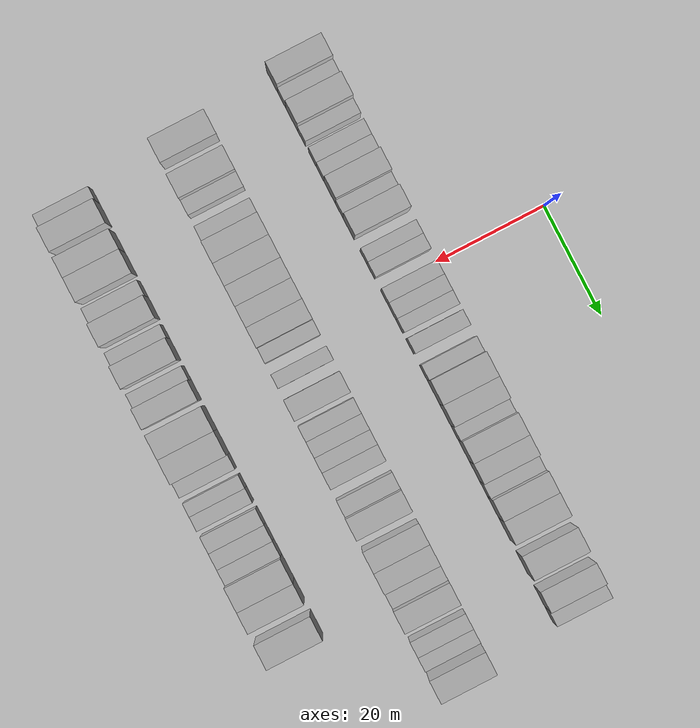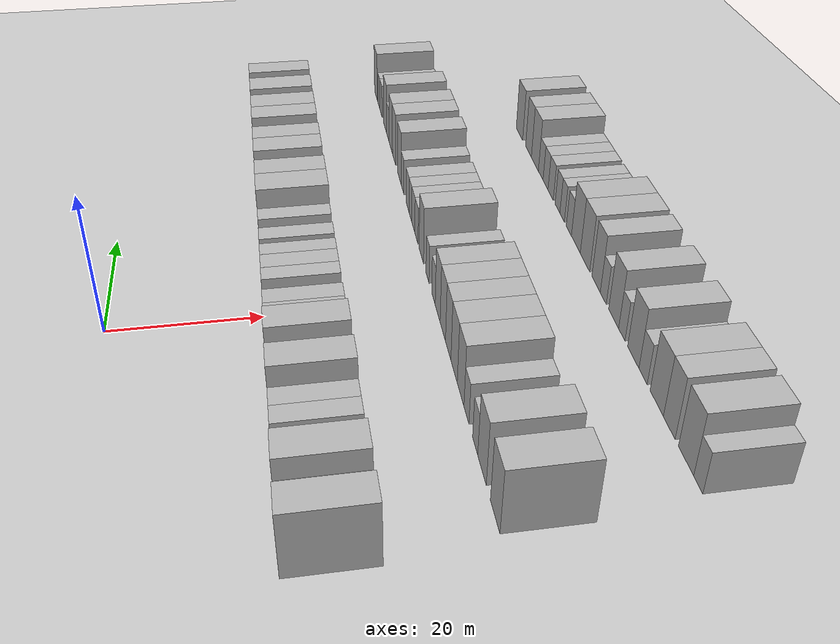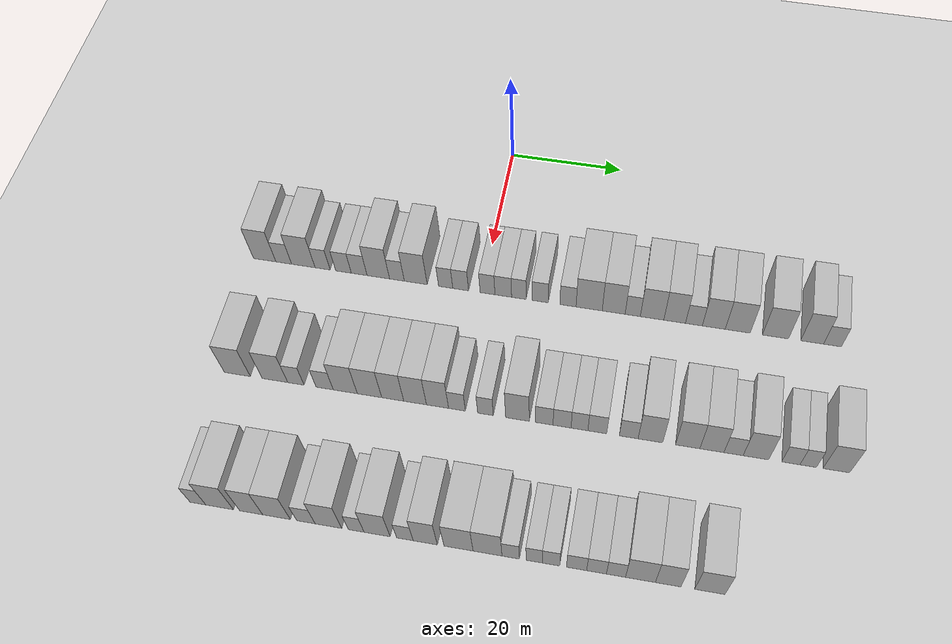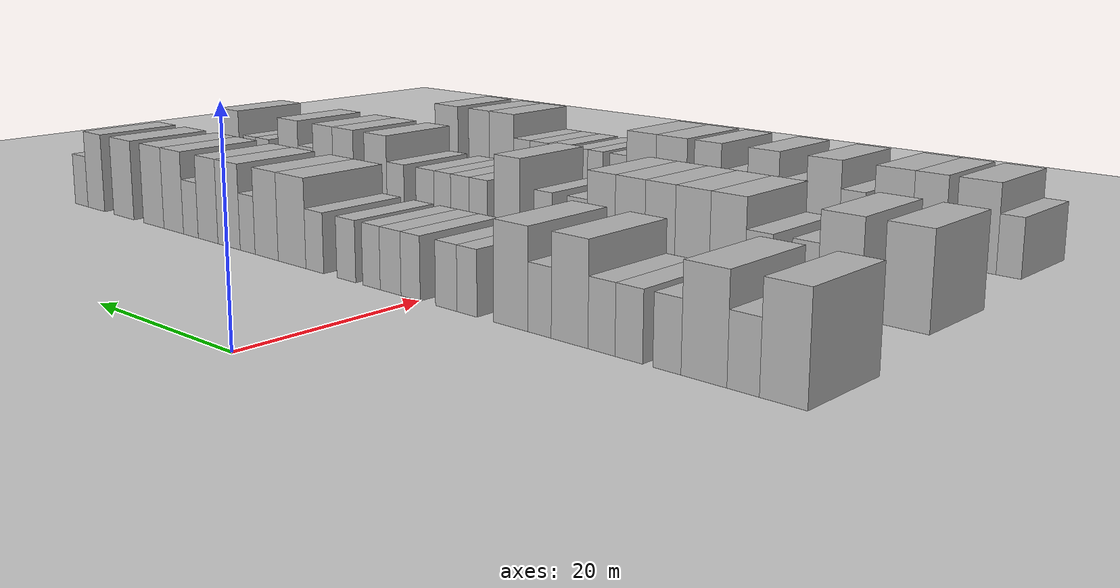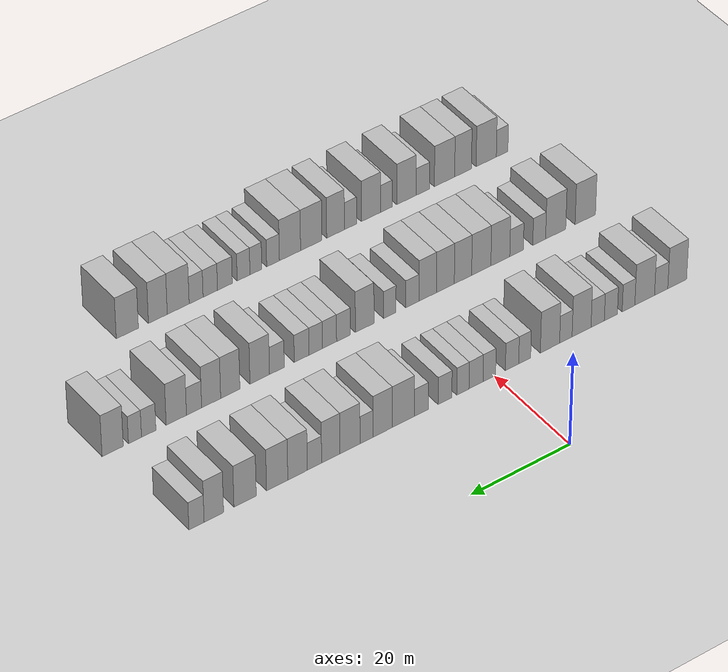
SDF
<sdf version="1.6">
 <world name="default">
  <include><name>ground_plane_1</name><uri>model://HANNAS_ground_plane</uri></include>
  <model name="building_85">
   <static>1</static>
   <pose>25.0000 -38.1934 0 0.000000 0.000000 0.000000</pose>
   <link name="link">
    <pose>0 0 4.50 0 0 0</pose>
    <collision name="collision"><geometry><box><size>10.0000 4.0238 9.0000</size></box></geometry></collision>
    <visual name="visual">
     <cast_shadows>0</cast_shadows>
     <geometry><box><size>10.0000 4.0238 9.0000</size></box></geometry>
     <material>
      <script>
       <uri>model://HANNAS_wall/materials/scripts</uri>
       <uri>model://HANNAS_wall/materials/textures</uri>
       <name>vrc/HANNAS_wall</name>
      </script>
     </material>
    </visual>
   </link>
  </model>
  <model name="building_86">
   <static>1</static>
   <pose>25.0000 -34.7676 0 0.000000 0.000000 0.000000</pose>
   <link name="link">
    <pose>0 0 3.00 0 0 0</pose>
    <collision name="collision"><geometry><box><size>10.0000 2.8278 6.0000</size></box></geometry></collision>
    <visual name="visual">
     <cast_shadows>0</cast_shadows>
     <geometry><box><size>10.0000 2.8278 6.0000</size></box></geometry>
     <material>
      <script>
       <uri>model://HANNAS_wall/materials/scripts</uri>
       <uri>model://HANNAS_wall/materials/textures</uri>
       <name>vrc/HANNAS_wall</name>
      </script>
     </material>
    </visual>
   </link>
  </model>
  <model name="building_87">
   <static>1</static>
   <pose>25.0000 -31.2595 0 0.000000 0.000000 0.000000</pose>
   <link name="link">
    <pose>0 0 4.50 0 0 0</pose>
    <collision name="collision"><geometry><box><size>10.0000 4.1885 9.0000</size></box></geometry></collision>
    <visual name="visual">
     <cast_shadows>0</cast_shadows>
     <geometry><box><size>10.0000 4.1885 9.0000</size></box></geometry>
     <material>
      <script>
       <uri>model://HANNAS_wall/materials/scripts</uri>
       <uri>model://HANNAS_wall/materials/textures</uri>
       <name>vrc/HANNAS_wall</name>
      </script>
     </material>
    </visual>
   </link>
  </model>
  <model name="building_88">
   <static>1</static>
   <pose>25.0000 -27.8253 0 0.000000 0.000000 0.000000</pose>
   <link name="link">
    <pose>0 0 3.00 0 0 0</pose>
    <collision name="collision"><geometry><box><size>10.0000 2.6799 6.0000</size></box></geometry></collision>
    <visual name="visual">
     <cast_shadows>0</cast_shadows>
     <geometry><box><size>10.0000 2.6799 6.0000</size></box></geometry>
     <material>
      <script>
       <uri>model://HANNAS_wall/materials/scripts</uri>
       <uri>model://HANNAS_wall/materials/textures</uri>
       <name>vrc/HANNAS_wall</name>
      </script>
     </material>
    </visual>
   </link>
  </model>
  <model name="building_89">
   <static>1</static>
   <pose>25.0000 -24.1056 0 0.000000 0.000000 0.000000</pose>
   <link name="link">
    <pose>0 0 3.00 0 0 0</pose>
    <collision name="collision"><geometry><box><size>10.0000 2.7595 6.0000</size></box></geometry></collision>
    <visual name="visual">
     <cast_shadows>0</cast_shadows>
     <geometry><box><size>10.0000 2.7595 6.0000</size></box></geometry>
     <material>
      <script>
       <uri>model://HANNAS_wall/materials/scripts</uri>
       <uri>model://HANNAS_wall/materials/textures</uri>
       <name>vrc/HANNAS_wall</name>
      </script>
     </material>
    </visual>
   </link>
  </model>
  <model name="building_90">
   <static>1</static>
   <pose>25.0000 -21.3300 0 0.000000 0.000000 0.000000</pose>
   <link name="link">
    <pose>0 0 3.00 0 0 0</pose>
    <collision name="collision"><geometry><box><size>10.0000 2.7918 6.0000</size></box></geometry></collision>
    <visual name="visual">
     <cast_shadows>0</cast_shadows>
     <geometry><box><size>10.0000 2.7918 6.0000</size></box></geometry>
     <material>
      <script>
       <uri>model://HANNAS_wall/materials/scripts</uri>
       <uri>model://HANNAS_wall/materials/textures</uri>
       <name>vrc/HANNAS_wall</name>
      </script>
     </material>
    </visual>
   </link>
  </model>
  <model name="building_91">
   <static>1</static>
   <pose>25.0000 -17.9507 0 0.000000 0.000000 0.000000</pose>
   <link name="link">
    <pose>0 0 4.50 0 0 0</pose>
    <collision name="collision"><geometry><box><size>10.0000 3.9669 9.0000</size></box></geometry></collision>
    <visual name="visual">
     <cast_shadows>0</cast_shadows>
     <geometry><box><size>10.0000 3.9669 9.0000</size></box></geometry>
     <material>
      <script>
       <uri>model://HANNAS_wall/materials/scripts</uri>
       <uri>model://HANNAS_wall/materials/textures</uri>
       <name>vrc/HANNAS_wall</name>
      </script>
     </material>
    </visual>
   </link>
  </model>
  <model name="building_92">
   <static>1</static>
   <pose>25.0000 -14.6671 0 0.000000 0.000000 0.000000</pose>
   <link name="link">
    <pose>0 0 3.00 0 0 0</pose>
    <collision name="collision"><geometry><box><size>10.0000 2.6004 6.0000</size></box></geometry></collision>
    <visual name="visual">
     <cast_shadows>0</cast_shadows>
     <geometry><box><size>10.0000 2.6004 6.0000</size></box></geometry>
     <material>
      <script>
       <uri>model://HANNAS_wall/materials/scripts</uri>
       <uri>model://HANNAS_wall/materials/textures</uri>
       <name>vrc/HANNAS_wall</name>
      </script>
     </material>
    </visual>
   </link>
  </model>
  <model name="building_93">
   <static>1</static>
   <pose>25.0000 -11.3653 0 0.000000 0.000000 0.000000</pose>
   <link name="link">
    <pose>0 0 4.50 0 0 0</pose>
    <collision name="collision"><geometry><box><size>10.0000 4.0031 9.0000</size></box></geometry></collision>
    <visual name="visual">
     <cast_shadows>0</cast_shadows>
     <geometry><box><size>10.0000 4.0031 9.0000</size></box></geometry>
     <material>
      <script>
       <uri>model://HANNAS_wall/materials/scripts</uri>
       <uri>model://HANNAS_wall/materials/textures</uri>
       <name>vrc/HANNAS_wall</name>
      </script>
     </material>
    </visual>
   </link>
  </model>
  <model name="building_94">
   <static>1</static>
   <pose>25.0000 -6.1271 0 0.000000 0.000000 0.000000</pose>
   <link name="link">
    <pose>0 0 3.00 0 0 0</pose>
    <collision name="collision"><geometry><box><size>10.0000 2.4734 6.0000</size></box></geometry></collision>
    <visual name="visual">
     <cast_shadows>0</cast_shadows>
     <geometry><box><size>10.0000 2.4734 6.0000</size></box></geometry>
     <material>
      <script>
       <uri>model://HANNAS_wall/materials/scripts</uri>
       <uri>model://HANNAS_wall/materials/textures</uri>
       <name>vrc/HANNAS_wall</name>
      </script>
     </material>
    </visual>
   </link>
  </model>
  <model name="building_95">
   <static>1</static>
   <pose>25.0000 -3.5186 0 0.000000 0.000000 0.000000</pose>
   <link name="link">
    <pose>0 0 3.00 0 0 0</pose>
    <collision name="collision"><geometry><box><size>10.0000 2.7436 6.0000</size></box></geometry></collision>
    <visual name="visual">
     <cast_shadows>0</cast_shadows>
     <geometry><box><size>10.0000 2.7436 6.0000</size></box></geometry>
     <material>
      <script>
       <uri>model://HANNAS_wall/materials/scripts</uri>
       <uri>model://HANNAS_wall/materials/textures</uri>
       <name>vrc/HANNAS_wall</name>
      </script>
     </material>
    </visual>
   </link>
  </model>
  <model name="building_96">
   <static>1</static>
   <pose>25.0000 1.1406 0 0.000000 0.000000 0.000000</pose>
   <link name="link">
    <pose>0 0 3.00 0 0 0</pose>
    <collision name="collision"><geometry><box><size>10.0000 2.5749 6.0000</size></box></geometry></collision>
    <visual name="visual">
     <cast_shadows>0</cast_shadows>
     <geometry><box><size>10.0000 2.5749 6.0000</size></box></geometry>
     <material>
      <script>
       <uri>model://HANNAS_wall/materials/scripts</uri>
       <uri>model://HANNAS_wall/materials/textures</uri>
       <name>vrc/HANNAS_wall</name>
      </script>
     </material>
    </visual>
   </link>
  </model>
  <model name="building_97">
   <static>1</static>
   <pose>25.0000 3.8653 0 0.000000 0.000000 0.000000</pose>
   <link name="link">
    <pose>0 0 3.00 0 0 0</pose>
    <collision name="collision"><geometry><box><size>10.0000 2.8744 6.0000</size></box></geometry></collision>
    <visual name="visual">
     <cast_shadows>0</cast_shadows>
     <geometry><box><size>10.0000 2.8744 6.0000</size></box></geometry>
     <material>
      <script>
       <uri>model://HANNAS_wall/materials/scripts</uri>
       <uri>model://HANNAS_wall/materials/textures</uri>
       <name>vrc/HANNAS_wall</name>
      </script>
     </material>
    </visual>
   </link>
  </model>
  <model name="building_98">
   <static>1</static>
   <pose>25.0000 6.5494 0 0.000000 0.000000 0.000000</pose>
   <link name="link">
    <pose>0 0 3.00 0 0 0</pose>
    <collision name="collision"><geometry><box><size>10.0000 2.4939 6.0000</size></box></geometry></collision>
    <visual name="visual">
     <cast_shadows>0</cast_shadows>
     <geometry><box><size>10.0000 2.4939 6.0000</size></box></geometry>
     <material>
      <script>
       <uri>model://HANNAS_wall/materials/scripts</uri>
       <uri>model://HANNAS_wall/materials/textures</uri>
       <name>vrc/HANNAS_wall</name>
      </script>
     </material>
    </visual>
   </link>
  </model>
  <model name="building_99">
   <static>1</static>
   <pose>25.0000 10.1901 0 0.000000 0.000000 0.000000</pose>
   <link name="link">
    <pose>0 0 3.00 0 0 0</pose>
    <collision name="collision"><geometry><box><size>10.0000 2.7875 6.0000</size></box></geometry></collision>
    <visual name="visual">
     <cast_shadows>0</cast_shadows>
     <geometry><box><size>10.0000 2.7875 6.0000</size></box></geometry>
     <material>
      <script>
       <uri>model://HANNAS_wall/materials/scripts</uri>
       <uri>model://HANNAS_wall/materials/textures</uri>
       <name>vrc/HANNAS_wall</name>
      </script>
     </material>
    </visual>
   </link>
  </model>
  <model name="building_100">
   <static>1</static>
   <pose>25.0000 14.9636 0 0.000000 0.000000 0.000000</pose>
   <link name="link">
    <pose>0 0 3.00 0 0 0</pose>
    <collision name="collision"><geometry><box><size>10.0000 2.7595 6.0000</size></box></geometry></collision>
    <visual name="visual">
     <cast_shadows>0</cast_shadows>
     <geometry><box><size>10.0000 2.7595 6.0000</size></box></geometry>
     <material>
      <script>
       <uri>model://HANNAS_wall/materials/scripts</uri>
       <uri>model://HANNAS_wall/materials/textures</uri>
       <name>vrc/HANNAS_wall</name>
      </script>
     </material>
    </visual>
   </link>
  </model>
  <model name="building_101">
   <static>1</static>
   <pose>25.0000 18.5697 0 0.000000 0.000000 0.000000</pose>
   <link name="link">
    <pose>0 0 4.50 0 0 0</pose>
    <collision name="collision"><geometry><box><size>10.0000 4.4526 9.0000</size></box></geometry></collision>
    <visual name="visual">
     <cast_shadows>0</cast_shadows>
     <geometry><box><size>10.0000 4.4526 9.0000</size></box></geometry>
     <material>
      <script>
       <uri>model://HANNAS_wall/materials/scripts</uri>
       <uri>model://HANNAS_wall/materials/textures</uri>
       <name>vrc/HANNAS_wall</name>
      </script>
     </material>
    </visual>
   </link>
  </model>
  <model name="building_102">
   <static>1</static>
   <pose>25.0000 22.7353 0 0.000000 0.000000 0.000000</pose>
   <link name="link">
    <pose>0 0 4.50 0 0 0</pose>
    <collision name="collision"><geometry><box><size>10.0000 3.8787 9.0000</size></box></geometry></collision>
    <visual name="visual">
     <cast_shadows>0</cast_shadows>
     <geometry><box><size>10.0000 3.8787 9.0000</size></box></geometry>
     <material>
      <script>
       <uri>model://HANNAS_wall/materials/scripts</uri>
       <uri>model://HANNAS_wall/materials/textures</uri>
       <name>vrc/HANNAS_wall</name>
      </script>
     </material>
    </visual>
   </link>
  </model>
  <model name="building_103">
   <static>1</static>
   <pose>25.0000 25.9589 0 0.000000 0.000000 0.000000</pose>
   <link name="link">
    <pose>0 0 3.00 0 0 0</pose>
    <collision name="collision"><geometry><box><size>10.0000 2.5685 6.0000</size></box></geometry></collision>
    <visual name="visual">
     <cast_shadows>0</cast_shadows>
     <geometry><box><size>10.0000 2.5685 6.0000</size></box></geometry>
     <material>
      <script>
       <uri>model://HANNAS_wall/materials/scripts</uri>
       <uri>model://HANNAS_wall/materials/textures</uri>
       <name>vrc/HANNAS_wall</name>
      </script>
     </material>
    </visual>
   </link>
  </model>
  <model name="building_104">
   <static>1</static>
   <pose>25.0000 29.2242 0 0.000000 0.000000 0.000000</pose>
   <link name="link">
    <pose>0 0 4.50 0 0 0</pose>
    <collision name="collision"><geometry><box><size>10.0000 3.9622 9.0000</size></box></geometry></collision>
    <visual name="visual">
     <cast_shadows>0</cast_shadows>
     <geometry><box><size>10.0000 3.9622 9.0000</size></box></geometry>
     <material>
      <script>
       <uri>model://HANNAS_wall/materials/scripts</uri>
       <uri>model://HANNAS_wall/materials/textures</uri>
       <name>vrc/HANNAS_wall</name>
      </script>
     </material>
    </visual>
   </link>
  </model>
  <model name="building_105">
   <static>1</static>
   <pose>25.0000 33.0241 0 0.000000 0.000000 0.000000</pose>
   <link name="link">
    <pose>0 0 4.50 0 0 0</pose>
    <collision name="collision"><geometry><box><size>10.0000 3.6377 9.0000</size></box></geometry></collision>
    <visual name="visual">
     <cast_shadows>0</cast_shadows>
     <geometry><box><size>10.0000 3.6377 9.0000</size></box></geometry>
     <material>
      <script>
       <uri>model://HANNAS_wall/materials/scripts</uri>
       <uri>model://HANNAS_wall/materials/textures</uri>
       <name>vrc/HANNAS_wall</name>
      </script>
     </material>
    </visual>
   </link>
  </model>
  <model name="building_106">
   <static>1</static>
   <pose>25.0000 36.2479 0 0.000000 0.000000 0.000000</pose>
   <link name="link">
    <pose>0 0 3.00 0 0 0</pose>
    <collision name="collision"><geometry><box><size>10.0000 2.8098 6.0000</size></box></geometry></collision>
    <visual name="visual">
     <cast_shadows>0</cast_shadows>
     <geometry><box><size>10.0000 2.8098 6.0000</size></box></geometry>
     <material>
      <script>
       <uri>model://HANNAS_wall/materials/scripts</uri>
       <uri>model://HANNAS_wall/materials/textures</uri>
       <name>vrc/HANNAS_wall</name>
      </script>
     </material>
    </visual>
   </link>
  </model>
  <model name="building_107">
   <static>1</static>
   <pose>25.0000 39.5675 0 0.000000 0.000000 0.000000</pose>
   <link name="link">
    <pose>0 0 4.50 0 0 0</pose>
    <collision name="collision"><geometry><box><size>10.0000 3.8295 9.0000</size></box></geometry></collision>
    <visual name="visual">
     <cast_shadows>0</cast_shadows>
     <geometry><box><size>10.0000 3.8295 9.0000</size></box></geometry>
     <material>
      <script>
       <uri>model://HANNAS_wall/materials/scripts</uri>
       <uri>model://HANNAS_wall/materials/textures</uri>
       <name>vrc/HANNAS_wall</name>
      </script>
     </material>
    </visual>
   </link>
  </model>
  <model name="building_108">
   <static>1</static>
   <pose>25.0000 43.5574 0 0.000000 0.000000 0.000000</pose>
   <link name="link">
    <pose>0 0 4.50 0 0 0</pose>
    <collision name="collision"><geometry><box><size>10.0000 4.1502 9.0000</size></box></geometry></collision>
    <visual name="visual">
     <cast_shadows>0</cast_shadows>
     <geometry><box><size>10.0000 4.1502 9.0000</size></box></geometry>
     <material>
      <script>
       <uri>model://HANNAS_wall/materials/scripts</uri>
       <uri>model://HANNAS_wall/materials/textures</uri>
       <name>vrc/HANNAS_wall</name>
      </script>
     </material>
    </visual>
   </link>
  </model>
  <model name="building_109">
   <static>1</static>
   <pose>25.0000 49.7942 0 0.000000 0.000000 0.000000</pose>
   <link name="link">
    <pose>0 0 4.50 0 0 0</pose>
    <collision name="collision"><geometry><box><size>10.0000 4.3233 9.0000</size></box></geometry></collision>
    <visual name="visual">
     <cast_shadows>0</cast_shadows>
     <geometry><box><size>10.0000 4.3233 9.0000</size></box></geometry>
     <material>
      <script>
       <uri>model://HANNAS_wall/materials/scripts</uri>
       <uri>model://HANNAS_wall/materials/textures</uri>
       <name>vrc/HANNAS_wall</name>
      </script>
     </material>
    </visual>
   </link>
  </model>
  <model name="building_110">
   <static>1</static>
   <pose>25.0000 55.8262 0 0.000000 0.000000 0.000000</pose>
   <link name="link">
    <pose>0 0 4.50 0 0 0</pose>
    <collision name="collision"><geometry><box><size>10.0000 3.7407 9.0000</size></box></geometry></collision>
    <visual name="visual">
     <cast_shadows>0</cast_shadows>
     <geometry><box><size>10.0000 3.7407 9.0000</size></box></geometry>
     <material>
      <script>
       <uri>model://HANNAS_wall/materials/scripts</uri>
       <uri>model://HANNAS_wall/materials/textures</uri>
       <name>vrc/HANNAS_wall</name>
      </script>
     </material>
    </visual>
   </link>
  </model>
  <model name="building_111">
   <static>1</static>
   <pose>25.0000 59.1582 0 0.000000 0.000000 0.000000</pose>
   <link name="link">
    <pose>0 0 3.00 0 0 0</pose>
    <collision name="collision"><geometry><box><size>10.0000 2.9234 6.0000</size></box></geometry></collision>
    <visual name="visual">
     <cast_shadows>0</cast_shadows>
     <geometry><box><size>10.0000 2.9234 6.0000</size></box></geometry>
     <material>
      <script>
       <uri>model://HANNAS_wall/materials/scripts</uri>
       <uri>model://HANNAS_wall/materials/textures</uri>
       <name>vrc/HANNAS_wall</name>
      </script>
     </material>
    </visual>
   </link>
  </model>
  <model name="building_263">
   <static>1</static>
   <pose>47.0000 -35.9050 0 0.000000 0.000000 0.000000</pose>
   <link name="link">
    <pose>0 0 4.50 0 0 0</pose>
    <collision name="collision"><geometry><box><size>10.0000 4.3837 9.0000</size></box></geometry></collision>
    <visual name="visual">
     <cast_shadows>0</cast_shadows>
     <geometry><box><size>10.0000 4.3837 9.0000</size></box></geometry>
     <material>
      <script>
       <uri>model://HANNAS_wall/materials/scripts</uri>
       <uri>model://HANNAS_wall/materials/textures</uri>
       <name>vrc/HANNAS_wall</name>
      </script>
     </material>
    </visual>
   </link>
  </model>
  <model name="building_264">
   <static>1</static>
   <pose>47.0000 -29.5635 0 0.000000 0.000000 0.000000</pose>
   <link name="link">
    <pose>0 0 4.50 0 0 0</pose>
    <collision name="collision"><geometry><box><size>10.0000 4.2995 9.0000</size></box></geometry></collision>
    <visual name="visual">
     <cast_shadows>0</cast_shadows>
     <geometry><box><size>10.0000 4.2995 9.0000</size></box></geometry>
     <material>
      <script>
       <uri>model://HANNAS_wall/materials/scripts</uri>
       <uri>model://HANNAS_wall/materials/textures</uri>
       <name>vrc/HANNAS_wall</name>
      </script>
     </material>
    </visual>
   </link>
  </model>
  <model name="building_265">
   <static>1</static>
   <pose>47.0000 -26.0461 0 0.000000 0.000000 0.000000</pose>
   <link name="link">
    <pose>0 0 3.00 0 0 0</pose>
    <collision name="collision"><geometry><box><size>10.0000 2.7352 6.0000</size></box></geometry></collision>
    <visual name="visual">
     <cast_shadows>0</cast_shadows>
     <geometry><box><size>10.0000 2.7352 6.0000</size></box></geometry>
     <material>
      <script>
       <uri>model://HANNAS_wall/materials/scripts</uri>
       <uri>model://HANNAS_wall/materials/textures</uri>
       <name>vrc/HANNAS_wall</name>
      </script>
     </material>
    </visual>
   </link>
  </model>
  <model name="building_266">
   <static>1</static>
   <pose>47.0000 -21.2465 0 0.000000 0.000000 0.000000</pose>
   <link name="link">
    <pose>0 0 3.00 0 0 0</pose>
    <collision name="collision"><geometry><box><size>10.0000 2.8642 6.0000</size></box></geometry></collision>
    <visual name="visual">
     <cast_shadows>0</cast_shadows>
     <geometry><box><size>10.0000 2.8642 6.0000</size></box></geometry>
     <material>
      <script>
       <uri>model://HANNAS_wall/materials/scripts</uri>
       <uri>model://HANNAS_wall/materials/textures</uri>
       <name>vrc/HANNAS_wall</name>
      </script>
     </material>
    </visual>
   </link>
  </model>
  <model name="building_267">
   <static>1</static>
   <pose>47.0000 -17.8223 0 0.000000 0.000000 0.000000</pose>
   <link name="link">
    <pose>0 0 4.50 0 0 0</pose>
    <collision name="collision"><geometry><box><size>10.0000 3.9840 9.0000</size></box></geometry></collision>
    <visual name="visual">
     <cast_shadows>0</cast_shadows>
     <geometry><box><size>10.0000 3.9840 9.0000</size></box></geometry>
     <material>
      <script>
       <uri>model://HANNAS_wall/materials/scripts</uri>
       <uri>model://HANNAS_wall/materials/textures</uri>
       <name>vrc/HANNAS_wall</name>
      </script>
     </material>
    </visual>
   </link>
  </model>
  <model name="building_268">
   <static>1</static>
   <pose>47.0000 -13.8115 0 0.000000 0.000000 0.000000</pose>
   <link name="link">
    <pose>0 0 4.50 0 0 0</pose>
    <collision name="collision"><geometry><box><size>10.0000 4.0377 9.0000</size></box></geometry></collision>
    <visual name="visual">
     <cast_shadows>0</cast_shadows>
     <geometry><box><size>10.0000 4.0377 9.0000</size></box></geometry>
     <material>
      <script>
       <uri>model://HANNAS_wall/materials/scripts</uri>
       <uri>model://HANNAS_wall/materials/textures</uri>
       <name>vrc/HANNAS_wall</name>
      </script>
     </material>
    </visual>
   </link>
  </model>
  <model name="building_269">
   <static>1</static>
   <pose>47.0000 -9.9793 0 0.000000 0.000000 0.000000</pose>
   <link name="link">
    <pose>0 0 4.50 0 0 0</pose>
    <collision name="collision"><geometry><box><size>10.0000 3.6267 9.0000</size></box></geometry></collision>
    <visual name="visual">
     <cast_shadows>0</cast_shadows>
     <geometry><box><size>10.0000 3.6267 9.0000</size></box></geometry>
     <material>
      <script>
       <uri>model://HANNAS_wall/materials/scripts</uri>
       <uri>model://HANNAS_wall/materials/textures</uri>
       <name>vrc/HANNAS_wall</name>
      </script>
     </material>
    </visual>
   </link>
  </model>
  <model name="building_270">
   <static>1</static>
   <pose>47.0000 -6.3002 0 0.000000 0.000000 0.000000</pose>
   <link name="link">
    <pose>0 0 4.50 0 0 0</pose>
    <collision name="collision"><geometry><box><size>10.0000 3.7316 9.0000</size></box></geometry></collision>
    <visual name="visual">
     <cast_shadows>0</cast_shadows>
     <geometry><box><size>10.0000 3.7316 9.0000</size></box></geometry>
     <material>
      <script>
       <uri>model://HANNAS_wall/materials/scripts</uri>
       <uri>model://HANNAS_wall/materials/textures</uri>
       <name>vrc/HANNAS_wall</name>
      </script>
     </material>
    </visual>
   </link>
  </model>
  <model name="building_271">
   <static>1</static>
   <pose>47.0000 -2.6279 0 0.000000 0.000000 0.000000</pose>
   <link name="link">
    <pose>0 0 4.50 0 0 0</pose>
    <collision name="collision"><geometry><box><size>10.0000 3.6130 9.0000</size></box></geometry></collision>
    <visual name="visual">
     <cast_shadows>0</cast_shadows>
     <geometry><box><size>10.0000 3.6130 9.0000</size></box></geometry>
     <material>
      <script>
       <uri>model://HANNAS_wall/materials/scripts</uri>
       <uri>model://HANNAS_wall/materials/textures</uri>
       <name>vrc/HANNAS_wall</name>
      </script>
     </material>
    </visual>
   </link>
  </model>
  <model name="building_272">
   <static>1</static>
   <pose>47.0000 0.5429 0 0.000000 0.000000 0.000000</pose>
   <link name="link">
    <pose>0 0 3.00 0 0 0</pose>
    <collision name="collision"><geometry><box><size>10.0000 2.7286 6.0000</size></box></geometry></collision>
    <visual name="visual">
     <cast_shadows>0</cast_shadows>
     <geometry><box><size>10.0000 2.7286 6.0000</size></box></geometry>
     <material>
      <script>
       <uri>model://HANNAS_wall/materials/scripts</uri>
       <uri>model://HANNAS_wall/materials/textures</uri>
       <name>vrc/HANNAS_wall</name>
      </script>
     </material>
    </visual>
   </link>
  </model>
  <model name="building_273">
   <static>1</static>
   <pose>47.0000 5.1715 0 0.000000 0.000000 0.000000</pose>
   <link name="link">
    <pose>0 0 3.00 0 0 0</pose>
    <collision name="collision"><geometry><box><size>10.0000 2.5286 6.0000</size></box></geometry></collision>
    <visual name="visual">
     <cast_shadows>0</cast_shadows>
     <geometry><box><size>10.0000 2.5286 6.0000</size></box></geometry>
     <material>
      <script>
       <uri>model://HANNAS_wall/materials/scripts</uri>
       <uri>model://HANNAS_wall/materials/textures</uri>
       <name>vrc/HANNAS_wall</name>
      </script>
     </material>
    </visual>
   </link>
  </model>
  <model name="building_274">
   <static>1</static>
   <pose>47.0000 10.3346 0 0.000000 0.000000 0.000000</pose>
   <link name="link">
    <pose>0 0 4.50 0 0 0</pose>
    <collision name="collision"><geometry><box><size>10.0000 3.7976 9.0000</size></box></geometry></collision>
    <visual name="visual">
     <cast_shadows>0</cast_shadows>
     <geometry><box><size>10.0000 3.7976 9.0000</size></box></geometry>
     <material>
      <script>
       <uri>model://HANNAS_wall/materials/scripts</uri>
       <uri>model://HANNAS_wall/materials/textures</uri>
       <name>vrc/HANNAS_wall</name>
      </script>
     </material>
    </visual>
   </link>
  </model>
  <model name="building_275">
   <static>1</static>
   <pose>47.0000 14.6422 0 0.000000 0.000000 0.000000</pose>
   <link name="link">
    <pose>0 0 3.00 0 0 0</pose>
    <collision name="collision"><geometry><box><size>10.0000 2.8175 6.0000</size></box></geometry></collision>
    <visual name="visual">
     <cast_shadows>0</cast_shadows>
     <geometry><box><size>10.0000 2.8175 6.0000</size></box></geometry>
     <material>
      <script>
       <uri>model://HANNAS_wall/materials/scripts</uri>
       <uri>model://HANNAS_wall/materials/textures</uri>
       <name>vrc/HANNAS_wall</name>
      </script>
     </material>
    </visual>
   </link>
  </model>
  <model name="building_276">
   <static>1</static>
   <pose>47.0000 17.4936 0 0.000000 0.000000 0.000000</pose>
   <link name="link">
    <pose>0 0 3.00 0 0 0</pose>
    <collision name="collision"><geometry><box><size>10.0000 2.8852 6.0000</size></box></geometry></collision>
    <visual name="visual">
     <cast_shadows>0</cast_shadows>
     <geometry><box><size>10.0000 2.8852 6.0000</size></box></geometry>
     <material>
      <script>
       <uri>model://HANNAS_wall/materials/scripts</uri>
       <uri>model://HANNAS_wall/materials/textures</uri>
       <name>vrc/HANNAS_wall</name>
      </script>
     </material>
    </visual>
   </link>
  </model>
  <model name="building_277">
   <static>1</static>
   <pose>47.0000 20.2753 0 0.000000 0.000000 0.000000</pose>
   <link name="link">
    <pose>0 0 3.00 0 0 0</pose>
    <collision name="collision"><geometry><box><size>10.0000 2.6783 6.0000</size></box></geometry></collision>
    <visual name="visual">
     <cast_shadows>0</cast_shadows>
     <geometry><box><size>10.0000 2.6783 6.0000</size></box></geometry>
     <material>
      <script>
       <uri>model://HANNAS_wall/materials/scripts</uri>
       <uri>model://HANNAS_wall/materials/textures</uri>
       <name>vrc/HANNAS_wall</name>
      </script>
     </material>
    </visual>
   </link>
  </model>
  <model name="building_278">
   <static>1</static>
   <pose>47.0000 23.1101 0 0.000000 0.000000 0.000000</pose>
   <link name="link">
    <pose>0 0 3.00 0 0 0</pose>
    <collision name="collision"><geometry><box><size>10.0000 2.9913 6.0000</size></box></geometry></collision>
    <visual name="visual">
     <cast_shadows>0</cast_shadows>
     <geometry><box><size>10.0000 2.9913 6.0000</size></box></geometry>
     <material>
      <script>
       <uri>model://HANNAS_wall/materials/scripts</uri>
       <uri>model://HANNAS_wall/materials/textures</uri>
       <name>vrc/HANNAS_wall</name>
      </script>
     </material>
    </visual>
   </link>
  </model>
  <model name="building_279">
   <static>1</static>
   <pose>47.0000 28.0875 0 0.000000 0.000000 0.000000</pose>
   <link name="link">
    <pose>0 0 3.00 0 0 0</pose>
    <collision name="collision"><geometry><box><size>10.0000 2.9634 6.0000</size></box></geometry></collision>
    <visual name="visual">
     <cast_shadows>0</cast_shadows>
     <geometry><box><size>10.0000 2.9634 6.0000</size></box></geometry>
     <material>
      <script>
       <uri>model://HANNAS_wall/materials/scripts</uri>
       <uri>model://HANNAS_wall/materials/textures</uri>
       <name>vrc/HANNAS_wall</name>
      </script>
     </material>
    </visual>
   </link>
  </model>
  <model name="building_280">
   <static>1</static>
   <pose>47.0000 31.5168 0 0.000000 0.000000 0.000000</pose>
   <link name="link">
    <pose>0 0 4.50 0 0 0</pose>
    <collision name="collision"><geometry><box><size>10.0000 3.8951 9.0000</size></box></geometry></collision>
    <visual name="visual">
     <cast_shadows>0</cast_shadows>
     <geometry><box><size>10.0000 3.8951 9.0000</size></box></geometry>
     <material>
      <script>
       <uri>model://HANNAS_wall/materials/scripts</uri>
       <uri>model://HANNAS_wall/materials/textures</uri>
       <name>vrc/HANNAS_wall</name>
      </script>
     </material>
    </visual>
   </link>
  </model>
  <model name="building_281">
   <static>1</static>
   <pose>47.0000 37.3719 0 0.000000 0.000000 0.000000</pose>
   <link name="link">
    <pose>0 0 4.50 0 0 0</pose>
    <collision name="collision"><geometry><box><size>10.0000 3.8151 9.0000</size></box></geometry></collision>
    <visual name="visual">
     <cast_shadows>0</cast_shadows>
     <geometry><box><size>10.0000 3.8151 9.0000</size></box></geometry>
     <material>
      <script>
       <uri>model://HANNAS_wall/materials/scripts</uri>
       <uri>model://HANNAS_wall/materials/textures</uri>
       <name>vrc/HANNAS_wall</name>
      </script>
     </material>
    </visual>
   </link>
  </model>
  <model name="building_282">
   <static>1</static>
   <pose>47.0000 41.1578 0 0.000000 0.000000 0.000000</pose>
   <link name="link">
    <pose>0 0 4.50 0 0 0</pose>
    <collision name="collision"><geometry><box><size>10.0000 3.7567 9.0000</size></box></geometry></collision>
    <visual name="visual">
     <cast_shadows>0</cast_shadows>
     <geometry><box><size>10.0000 3.7567 9.0000</size></box></geometry>
     <material>
      <script>
       <uri>model://HANNAS_wall/materials/scripts</uri>
       <uri>model://HANNAS_wall/materials/textures</uri>
       <name>vrc/HANNAS_wall</name>
      </script>
     </material>
    </visual>
   </link>
  </model>
  <model name="building_283">
   <static>1</static>
   <pose>47.0000 44.5255 0 0.000000 0.000000 0.000000</pose>
   <link name="link">
    <pose>0 0 3.00 0 0 0</pose>
    <collision name="collision"><geometry><box><size>10.0000 2.9787 6.0000</size></box></geometry></collision>
    <visual name="visual">
     <cast_shadows>0</cast_shadows>
     <geometry><box><size>10.0000 2.9787 6.0000</size></box></geometry>
     <material>
      <script>
       <uri>model://HANNAS_wall/materials/scripts</uri>
       <uri>model://HANNAS_wall/materials/textures</uri>
       <name>vrc/HANNAS_wall</name>
      </script>
     </material>
    </visual>
   </link>
  </model>
  <model name="building_284">
   <static>1</static>
   <pose>47.0000 48.0024 0 0.000000 0.000000 0.000000</pose>
   <link name="link">
    <pose>0 0 4.50 0 0 0</pose>
    <collision name="collision"><geometry><box><size>10.0000 3.9751 9.0000</size></box></geometry></collision>
    <visual name="visual">
     <cast_shadows>0</cast_shadows>
     <geometry><box><size>10.0000 3.9751 9.0000</size></box></geometry>
     <material>
      <script>
       <uri>model://HANNAS_wall/materials/scripts</uri>
       <uri>model://HANNAS_wall/materials/textures</uri>
       <name>vrc/HANNAS_wall</name>
      </script>
     </material>
    </visual>
   </link>
  </model>
  <model name="building_285">
   <static>1</static>
   <pose>47.0000 53.3937 0 0.000000 0.000000 0.000000</pose>
   <link name="link">
    <pose>0 0 3.00 0 0 0</pose>
    <collision name="collision"><geometry><box><size>10.0000 2.8075 6.0000</size></box></geometry></collision>
    <visual name="visual">
     <cast_shadows>0</cast_shadows>
     <geometry><box><size>10.0000 2.8075 6.0000</size></box></geometry>
     <material>
      <script>
       <uri>model://HANNAS_wall/materials/scripts</uri>
       <uri>model://HANNAS_wall/materials/textures</uri>
       <name>vrc/HANNAS_wall</name>
      </script>
     </material>
    </visual>
   </link>
  </model>
  <model name="building_286">
   <static>1</static>
   <pose>47.0000 56.0629 0 0.000000 0.000000 0.000000</pose>
   <link name="link">
    <pose>0 0 3.00 0 0 0</pose>
    <collision name="collision"><geometry><box><size>10.0000 2.5309 6.0000</size></box></geometry></collision>
    <visual name="visual">
     <cast_shadows>0</cast_shadows>
     <geometry><box><size>10.0000 2.5309 6.0000</size></box></geometry>
     <material>
      <script>
       <uri>model://HANNAS_wall/materials/scripts</uri>
       <uri>model://HANNAS_wall/materials/textures</uri>
       <name>vrc/HANNAS_wall</name>
      </script>
     </material>
    </visual>
   </link>
  </model>
  <model name="building_287">
   <static>1</static>
   <pose>47.0000 60.3745 0 0.000000 0.000000 0.000000</pose>
   <link name="link">
    <pose>0 0 4.50 0 0 0</pose>
    <collision name="collision"><geometry><box><size>10.0000 4.0924 9.0000</size></box></geometry></collision>
    <visual name="visual">
     <cast_shadows>0</cast_shadows>
     <geometry><box><size>10.0000 4.0924 9.0000</size></box></geometry>
     <material>
      <script>
       <uri>model://HANNAS_wall/materials/scripts</uri>
       <uri>model://HANNAS_wall/materials/textures</uri>
       <name>vrc/HANNAS_wall</name>
      </script>
     </material>
    </visual>
   </link>
  </model>
  <model name="building_442">
   <static>1</static>
   <pose>69.0000 -34.9145 0 0.000000 0.000000 0.000000</pose>
   <link name="link">
    <pose>0 0 3.00 0 0 0</pose>
    <collision name="collision"><geometry><box><size>10.0000 2.4983 6.0000</size></box></geometry></collision>
    <visual name="visual">
     <cast_shadows>0</cast_shadows>
     <geometry><box><size>10.0000 2.4983 6.0000</size></box></geometry>
     <material>
      <script>
       <uri>model://HANNAS_wall/materials/scripts</uri>
       <uri>model://HANNAS_wall/materials/textures</uri>
       <name>vrc/HANNAS_wall</name>
      </script>
     </material>
    </visual>
   </link>
  </model>
  <model name="building_443">
   <static>1</static>
   <pose>69.0000 -31.4861 0 0.000000 0.000000 0.000000</pose>
   <link name="link">
    <pose>0 0 4.50 0 0 0</pose>
    <collision name="collision"><geometry><box><size>10.0000 4.3584 9.0000</size></box></geometry></collision>
    <visual name="visual">
     <cast_shadows>0</cast_shadows>
     <geometry><box><size>10.0000 4.3584 9.0000</size></box></geometry>
     <material>
      <script>
       <uri>model://HANNAS_wall/materials/scripts</uri>
       <uri>model://HANNAS_wall/materials/textures</uri>
       <name>vrc/HANNAS_wall</name>
      </script>
     </material>
    </visual>
   </link>
  </model>
  <model name="building_444">
   <static>1</static>
   <pose>69.0000 -26.5063 0 0.000000 0.000000 0.000000</pose>
   <link name="link">
    <pose>0 0 4.50 0 0 0</pose>
    <collision name="collision"><geometry><box><size>10.0000 3.6012 9.0000</size></box></geometry></collision>
    <visual name="visual">
     <cast_shadows>0</cast_shadows>
     <geometry><box><size>10.0000 3.6012 9.0000</size></box></geometry>
     <material>
      <script>
       <uri>model://HANNAS_wall/materials/scripts</uri>
       <uri>model://HANNAS_wall/materials/textures</uri>
       <name>vrc/HANNAS_wall</name>
      </script>
     </material>
    </visual>
   </link>
  </model>
  <model name="building_445">
   <static>1</static>
   <pose>69.0000 -22.5402 0 0.000000 0.000000 0.000000</pose>
   <link name="link">
    <pose>0 0 4.50 0 0 0</pose>
    <collision name="collision"><geometry><box><size>10.0000 4.3311 9.0000</size></box></geometry></collision>
    <visual name="visual">
     <cast_shadows>0</cast_shadows>
     <geometry><box><size>10.0000 4.3311 9.0000</size></box></geometry>
     <material>
      <script>
       <uri>model://HANNAS_wall/materials/scripts</uri>
       <uri>model://HANNAS_wall/materials/textures</uri>
       <name>vrc/HANNAS_wall</name>
      </script>
     </material>
    </visual>
   </link>
  </model>
  <model name="building_446">
   <static>1</static>
   <pose>69.0000 -17.9434 0 0.000000 0.000000 0.000000</pose>
   <link name="link">
    <pose>0 0 3.00 0 0 0</pose>
    <collision name="collision"><geometry><box><size>10.0000 2.8625 6.0000</size></box></geometry></collision>
    <visual name="visual">
     <cast_shadows>0</cast_shadows>
     <geometry><box><size>10.0000 2.8625 6.0000</size></box></geometry>
     <material>
      <script>
       <uri>model://HANNAS_wall/materials/scripts</uri>
       <uri>model://HANNAS_wall/materials/textures</uri>
       <name>vrc/HANNAS_wall</name>
      </script>
     </material>
    </visual>
   </link>
  </model>
  <model name="building_447">
   <static>1</static>
   <pose>69.0000 -14.4534 0 0.000000 0.000000 0.000000</pose>
   <link name="link">
    <pose>0 0 4.50 0 0 0</pose>
    <collision name="collision"><geometry><box><size>10.0000 4.1175 9.0000</size></box></geometry></collision>
    <visual name="visual">
     <cast_shadows>0</cast_shadows>
     <geometry><box><size>10.0000 4.1175 9.0000</size></box></geometry>
     <material>
      <script>
       <uri>model://HANNAS_wall/materials/scripts</uri>
       <uri>model://HANNAS_wall/materials/textures</uri>
       <name>vrc/HANNAS_wall</name>
      </script>
     </material>
    </visual>
   </link>
  </model>
  <model name="building_448">
   <static>1</static>
   <pose>69.0000 -10.1707 0 0.000000 0.000000 0.000000</pose>
   <link name="link">
    <pose>0 0 3.00 0 0 0</pose>
    <collision name="collision"><geometry><box><size>10.0000 2.4478 6.0000</size></box></geometry></collision>
    <visual name="visual">
     <cast_shadows>0</cast_shadows>
     <geometry><box><size>10.0000 2.4478 6.0000</size></box></geometry>
     <material>
      <script>
       <uri>model://HANNAS_wall/materials/scripts</uri>
       <uri>model://HANNAS_wall/materials/textures</uri>
       <name>vrc/HANNAS_wall</name>
      </script>
     </material>
    </visual>
   </link>
  </model>
  <model name="building_449">
   <static>1</static>
   <pose>69.0000 -6.9459 0 0.000000 0.000000 0.000000</pose>
   <link name="link">
    <pose>0 0 4.50 0 0 0</pose>
    <collision name="collision"><geometry><box><size>10.0000 4.0018 9.0000</size></box></geometry></collision>
    <visual name="visual">
     <cast_shadows>0</cast_shadows>
     <geometry><box><size>10.0000 4.0018 9.0000</size></box></geometry>
     <material>
      <script>
       <uri>model://HANNAS_wall/materials/scripts</uri>
       <uri>model://HANNAS_wall/materials/textures</uri>
       <name>vrc/HANNAS_wall</name>
      </script>
     </material>
    </visual>
   </link>
  </model>
  <model name="building_450">
   <static>1</static>
   <pose>69.0000 -2.6757 0 0.000000 0.000000 0.000000</pose>
   <link name="link">
    <pose>0 0 3.00 0 0 0</pose>
    <collision name="collision"><geometry><box><size>10.0000 2.5385 6.0000</size></box></geometry></collision>
    <visual name="visual">
     <cast_shadows>0</cast_shadows>
     <geometry><box><size>10.0000 2.5385 6.0000</size></box></geometry>
     <material>
      <script>
       <uri>model://HANNAS_wall/materials/scripts</uri>
       <uri>model://HANNAS_wall/materials/textures</uri>
       <name>vrc/HANNAS_wall</name>
      </script>
     </material>
    </visual>
   </link>
  </model>
  <model name="building_451">
   <static>1</static>
   <pose>69.0000 0.4336 0 0.000000 0.000000 0.000000</pose>
   <link name="link">
    <pose>0 0 4.50 0 0 0</pose>
    <collision name="collision"><geometry><box><size>10.0000 3.6803 9.0000</size></box></geometry></collision>
    <visual name="visual">
     <cast_shadows>0</cast_shadows>
     <geometry><box><size>10.0000 3.6803 9.0000</size></box></geometry>
     <material>
      <script>
       <uri>model://HANNAS_wall/materials/scripts</uri>
       <uri>model://HANNAS_wall/materials/textures</uri>
       <name>vrc/HANNAS_wall</name>
      </script>
     </material>
    </visual>
   </link>
  </model>
  <model name="building_452">
   <static>1</static>
   <pose>69.0000 5.4794 0 0.000000 0.000000 0.000000</pose>
   <link name="link">
    <pose>0 0 4.50 0 0 0</pose>
    <collision name="collision"><geometry><box><size>10.0000 4.4113 9.0000</size></box></geometry></collision>
    <visual name="visual">
     <cast_shadows>0</cast_shadows>
     <geometry><box><size>10.0000 4.4113 9.0000</size></box></geometry>
     <material>
      <script>
       <uri>model://HANNAS_wall/materials/scripts</uri>
       <uri>model://HANNAS_wall/materials/textures</uri>
       <name>vrc/HANNAS_wall</name>
      </script>
     </material>
    </visual>
   </link>
  </model>
  <model name="building_453">
   <static>1</static>
   <pose>69.0000 9.8642 0 0.000000 0.000000 0.000000</pose>
   <link name="link">
    <pose>0 0 4.50 0 0 0</pose>
    <collision name="collision"><geometry><box><size>10.0000 4.3584 9.0000</size></box></geometry></collision>
    <visual name="visual">
     <cast_shadows>0</cast_shadows>
     <geometry><box><size>10.0000 4.3584 9.0000</size></box></geometry>
     <material>
      <script>
       <uri>model://HANNAS_wall/materials/scripts</uri>
       <uri>model://HANNAS_wall/materials/textures</uri>
       <name>vrc/HANNAS_wall</name>
      </script>
     </material>
    </visual>
   </link>
  </model>
  <model name="building_454">
   <static>1</static>
   <pose>69.0000 13.3511 0 0.000000 0.000000 0.000000</pose>
   <link name="link">
    <pose>0 0 3.00 0 0 0</pose>
    <collision name="collision"><geometry><box><size>10.0000 2.6153 6.0000</size></box></geometry></collision>
    <visual name="visual">
     <cast_shadows>0</cast_shadows>
     <geometry><box><size>10.0000 2.6153 6.0000</size></box></geometry>
     <material>
      <script>
       <uri>model://HANNAS_wall/materials/scripts</uri>
       <uri>model://HANNAS_wall/materials/textures</uri>
       <name>vrc/HANNAS_wall</name>
      </script>
     </material>
    </visual>
   </link>
  </model>
  <model name="building_455">
   <static>1</static>
   <pose>69.0000 16.8667 0 0.000000 0.000000 0.000000</pose>
   <link name="link">
    <pose>0 0 3.00 0 0 0</pose>
    <collision name="collision"><geometry><box><size>10.0000 2.4158 6.0000</size></box></geometry></collision>
    <visual name="visual">
     <cast_shadows>0</cast_shadows>
     <geometry><box><size>10.0000 2.4158 6.0000</size></box></geometry>
     <material>
      <script>
       <uri>model://HANNAS_wall/materials/scripts</uri>
       <uri>model://HANNAS_wall/materials/textures</uri>
       <name>vrc/HANNAS_wall</name>
      </script>
     </material>
    </visual>
   </link>
  </model>
  <model name="building_456">
   <static>1</static>
   <pose>69.0000 19.3789 0 0.000000 0.000000 0.000000</pose>
   <link name="link">
    <pose>0 0 3.00 0 0 0</pose>
    <collision name="collision"><geometry><box><size>10.0000 2.6087 6.0000</size></box></geometry></collision>
    <visual name="visual">
     <cast_shadows>0</cast_shadows>
     <geometry><box><size>10.0000 2.6087 6.0000</size></box></geometry>
     <material>
      <script>
       <uri>model://HANNAS_wall/materials/scripts</uri>
       <uri>model://HANNAS_wall/materials/textures</uri>
       <name>vrc/HANNAS_wall</name>
      </script>
     </material>
    </visual>
   </link>
  </model>
  <model name="building_457">
   <static>1</static>
   <pose>69.0000 23.1812 0 0.000000 0.000000 0.000000</pose>
   <link name="link">
    <pose>0 0 3.00 0 0 0</pose>
    <collision name="collision"><geometry><box><size>10.0000 2.9959 6.0000</size></box></geometry></collision>
    <visual name="visual">
     <cast_shadows>0</cast_shadows>
     <geometry><box><size>10.0000 2.9959 6.0000</size></box></geometry>
     <material>
      <script>
       <uri>model://HANNAS_wall/materials/scripts</uri>
       <uri>model://HANNAS_wall/materials/textures</uri>
       <name>vrc/HANNAS_wall</name>
      </script>
     </material>
    </visual>
   </link>
  </model>
  <model name="building_458">
   <static>1</static>
   <pose>69.0000 26.1398 0 0.000000 0.000000 0.000000</pose>
   <link name="link">
    <pose>0 0 3.00 0 0 0</pose>
    <collision name="collision"><geometry><box><size>10.0000 2.9214 6.0000</size></box></geometry></collision>
    <visual name="visual">
     <cast_shadows>0</cast_shadows>
     <geometry><box><size>10.0000 2.9214 6.0000</size></box></geometry>
     <material>
      <script>
       <uri>model://HANNAS_wall/materials/scripts</uri>
       <uri>model://HANNAS_wall/materials/textures</uri>
       <name>vrc/HANNAS_wall</name>
      </script>
     </material>
    </visual>
   </link>
  </model>
  <model name="building_459">
   <static>1</static>
   <pose>69.0000 29.0080 0 0.000000 0.000000 0.000000</pose>
   <link name="link">
    <pose>0 0 3.00 0 0 0</pose>
    <collision name="collision"><geometry><box><size>10.0000 2.8149 6.0000</size></box></geometry></collision>
    <visual name="visual">
     <cast_shadows>0</cast_shadows>
     <geometry><box><size>10.0000 2.8149 6.0000</size></box></geometry>
     <material>
      <script>
       <uri>model://HANNAS_wall/materials/scripts</uri>
       <uri>model://HANNAS_wall/materials/textures</uri>
       <name>vrc/HANNAS_wall</name>
      </script>
     </material>
    </visual>
   </link>
  </model>
  <model name="building_460">
   <static>1</static>
   <pose>69.0000 32.6131 0 0.000000 0.000000 0.000000</pose>
   <link name="link">
    <pose>0 0 4.50 0 0 0</pose>
    <collision name="collision"><geometry><box><size>10.0000 4.3954 9.0000</size></box></geometry></collision>
    <visual name="visual">
     <cast_shadows>0</cast_shadows>
     <geometry><box><size>10.0000 4.3954 9.0000</size></box></geometry>
     <material>
      <script>
       <uri>model://HANNAS_wall/materials/scripts</uri>
       <uri>model://HANNAS_wall/materials/textures</uri>
       <name>vrc/HANNAS_wall</name>
      </script>
     </material>
    </visual>
   </link>
  </model>
  <model name="building_461">
   <static>1</static>
   <pose>69.0000 36.6917 0 0.000000 0.000000 0.000000</pose>
   <link name="link">
    <pose>0 0 4.50 0 0 0</pose>
    <collision name="collision"><geometry><box><size>10.0000 3.7619 9.0000</size></box></geometry></collision>
    <visual name="visual">
     <cast_shadows>0</cast_shadows>
     <geometry><box><size>10.0000 3.7619 9.0000</size></box></geometry>
     <material>
      <script>
       <uri>model://HANNAS_wall/materials/scripts</uri>
       <uri>model://HANNAS_wall/materials/textures</uri>
       <name>vrc/HANNAS_wall</name>
      </script>
     </material>
    </visual>
   </link>
  </model>
  <model name="building_462">
   <static>1</static>
   <pose>69.0000 42.7715 0 0.000000 0.000000 0.000000</pose>
   <link name="link">
    <pose>0 0 4.50 0 0 0</pose>
    <collision name="collision"><geometry><box><size>10.0000 4.3976 9.0000</size></box></geometry></collision>
    <visual name="visual">
     <cast_shadows>0</cast_shadows>
     <geometry><box><size>10.0000 4.3976 9.0000</size></box></geometry>
     <material>
      <script>
       <uri>model://HANNAS_wall/materials/scripts</uri>
       <uri>model://HANNAS_wall/materials/textures</uri>
       <name>vrc/HANNAS_wall</name>
      </script>
     </material>
    </visual>
   </link>
  </model>
 </world>
</sdf>
